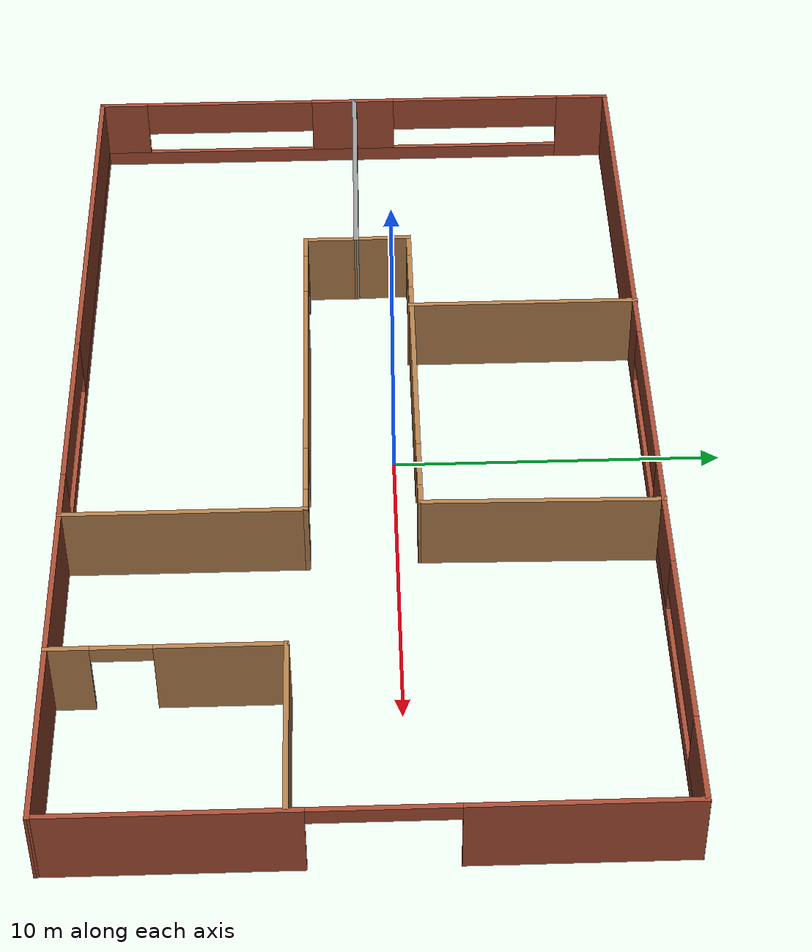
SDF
<?xml version='1.0'?>
<sdf version='1.7'>
  <model name='OfficeWorkSpace'>
    <pose>-0.220416 -1.01827 0 0 -0 0</pose>
    <link name='Wall_14'>
      <pose>0.020249 8.73935 0 0 -0 0.001077</pose>
      <visual name='Wall_14_Visual_0'>
        <pose>-9.14631 0 1.25 0 -0 0</pose>
        <geometry>
          <box>
            <size>12.4112 0.15 2.5</size>
          </box>
        </geometry>
        <material>
          <script>
            <uri>file://media/materials/scripts/gazebo.material</uri>
            <name>Gazebo/Bricks</name>
          </script>
          <ambient>0.760784 0.662745 0.627451 1</ambient>
        </material>
        <meta>
          <layer>0</layer>
        </meta>
      </visual>
      <collision name='Wall_14_Collision_0'>
        <geometry>
          <box>
            <size>12.4112 0.15 2.5</size>
          </box>
        </geometry>
        <pose>-9.14631 0 1.25 0 -0 0</pose>
      </collision>
      <visual name='Wall_14_Visual_1'>
        <pose>6.20561 0 0.25 0 -0 0</pose>
        <geometry>
          <box>
            <size>18.2926 0.15 0.5</size>
          </box>
        </geometry>
        <material>
          <script>
            <uri>file://media/materials/scripts/gazebo.material</uri>
            <name>Gazebo/Bricks</name>
          </script>
          <ambient>0.760784 0.662745 0.627451 1</ambient>
        </material>
        <meta>
          <layer>0</layer>
        </meta>
      </visual>
      <collision name='Wall_14_Collision_1'>
        <geometry>
          <box>
            <size>18.2926 0.15 0.5</size>
          </box>
        </geometry>
        <pose>6.20561 0 0.25 0 -0 0</pose>
      </collision>
      <visual name='Wall_14_Visual_2'>
        <pose>4.84978 0 1.5 0 -0 0</pose>
        <geometry>
          <box>
            <size>4.02735 0.15 2</size>
          </box>
        </geometry>
        <material>
          <script>
            <uri>file://media/materials/scripts/gazebo.material</uri>
            <name>Gazebo/Bricks</name>
          </script>
          <ambient>0.760784 0.662745 0.627451 1</ambient>
        </material>
        <meta>
          <layer>0</layer>
        </meta>
      </visual>
      <collision name='Wall_14_Collision_2'>
        <geometry>
          <box>
            <size>4.02735 0.15 2</size>
          </box>
        </geometry>
        <pose>4.84978 0 1.5 0 -0 0</pose>
      </collision>
      <visual name='Wall_14_Visual_3'>
        <pose>13.9462 0 1.5 0 -0 0</pose>
        <geometry>
          <box>
            <size>2.81134 0.15 2</size>
          </box>
        </geometry>
        <material>
          <script>
            <uri>file://media/materials/scripts/gazebo.material</uri>
            <name>Gazebo/Bricks</name>
          </script>
          <ambient>0.760784 0.662745 0.627451 1</ambient>
        </material>
        <meta>
          <layer>0</layer>
        </meta>
      </visual>
      <collision name='Wall_14_Collision_3'>
        <geometry>
          <box>
            <size>2.81134 0.15 2</size>
          </box>
        </geometry>
        <pose>13.9462 0 1.5 0 -0 0</pose>
      </collision>
      <visual name='Wall_14_Visual_4'>
        <pose>-0.052296 0 1.9 0 -0 0</pose>
        <geometry>
          <box>
            <size>5.7768 0.15 1.2</size>
          </box>
        </geometry>
        <material>
          <script>
            <uri>file://media/materials/scripts/gazebo.material</uri>
            <name>Gazebo/Bricks</name>
          </script>
          <ambient>0.760784 0.662745 0.627451 1</ambient>
        </material>
        <meta>
          <layer>0</layer>
        </meta>
      </visual>
      <collision name='Wall_14_Collision_4'>
        <geometry>
          <box>
            <size>5.7768 0.15 1.2</size>
          </box>
        </geometry>
        <pose>-0.052296 0 1.9 0 -0 0</pose>
      </collision>
      <visual name='Wall_14_Visual_5'>
        <pose>9.70202 0 1.9 0 -0 0</pose>
        <geometry>
          <box>
            <size>5.67713 0.15 1.2</size>
          </box>
        </geometry>
        <material>
          <script>
            <uri>file://media/materials/scripts/gazebo.material</uri>
            <name>Gazebo/Bricks</name>
          </script>
          <ambient>0.760784 0.662745 0.627451 1</ambient>
        </material>
        <meta>
          <layer>0</layer>
        </meta>
      </visual>
      <collision name='Wall_14_Collision_5'>
        <geometry>
          <box>
            <size>5.67713 0.15 1.2</size>
          </box>
        </geometry>
        <pose>9.70202 0 1.9 0 -0 0</pose>
      </collision>
    </link>
    <link name='Wall_15'>
      <pose>15.2986 -0.003783 0 0 -0 -1.57064</pose>
      <visual name='Wall_15_Visual_0'>
        <pose>-5.63265 0 1.25 0 -0 0</pose>
        <geometry>
          <box>
            <size>6.39227 0.15 2.5</size>
          </box>
        </geometry>
        <material>
          <script>
            <uri>file://media/materials/scripts/gazebo.material</uri>
            <name>Gazebo/Bricks</name>
          </script>
          <ambient>1 1 1 1</ambient>
        </material>
        <meta>
          <layer>0</layer>
        </meta>
      </visual>
      <collision name='Wall_15_Collision_0'>
        <geometry>
          <box>
            <size>6.39227 0.15 2.5</size>
          </box>
        </geometry>
        <pose>-5.63265 0 1.25 0 -0 0</pose>
      </collision>
      <visual name='Wall_15_Visual_1'>
        <pose>5.23812 0 1.25 0 -0 0</pose>
        <geometry>
          <box>
            <size>7.18132 0.15 2.5</size>
          </box>
        </geometry>
        <material>
          <script>
            <uri>file://media/materials/scripts/gazebo.material</uri>
            <name>Gazebo/Bricks</name>
          </script>
          <ambient>1 1 1 1</ambient>
        </material>
        <meta>
          <layer>0</layer>
        </meta>
      </visual>
      <collision name='Wall_15_Collision_1'>
        <geometry>
          <box>
            <size>7.18132 0.15 2.5</size>
          </box>
        </geometry>
        <pose>5.23812 0 1.25 0 -0 0</pose>
      </collision>
      <visual name='Wall_15_Visual_2'>
        <pose>-0.394524 0 2.25 0 -0 0</pose>
        <geometry>
          <box>
            <size>4.08398 0.15 0.5</size>
          </box>
        </geometry>
        <material>
          <script>
            <uri>file://media/materials/scripts/gazebo.material</uri>
            <name>Gazebo/Bricks</name>
          </script>
          <ambient>1 1 1 1</ambient>
        </material>
        <meta>
          <layer>0</layer>
        </meta>
      </visual>
      <collision name='Wall_15_Collision_2'>
        <geometry>
          <box>
            <size>4.08398 0.15 0.5</size>
          </box>
        </geometry>
        <pose>-0.394524 0 2.25 0 -0 0</pose>
      </collision>
    </link>
    <link name='Wall_16'>
      <pose>0.005188 -8.69234 0 0 -0 3.13733</pose>
      <visual name='Wall_16_Visual_0'>
        <pose>-9.09656 0 1.25 0 -0 0</pose>
        <geometry>
          <box>
            <size>12.5467 0.15 2.5</size>
          </box>
        </geometry>
        <material>
          <script>
            <uri>file://media/materials/scripts/gazebo.material</uri>
            <name>Gazebo/Bricks</name>
          </script>
          <ambient>1 1 1 1</ambient>
        </material>
        <meta>
          <layer>0</layer>
        </meta>
      </visual>
      <collision name='Wall_16_Collision_0'>
        <geometry>
          <box>
            <size>12.5467 0.15 2.5</size>
          </box>
        </geometry>
        <pose>-9.09656 0 1.25 0 -0 0</pose>
      </collision>
      <visual name='Wall_16_Visual_1'>
        <pose>6.27334 0 0.25 0 -0 0</pose>
        <geometry>
          <box>
            <size>18.1931 0.15 0.5</size>
          </box>
        </geometry>
        <material>
          <script>
            <uri>file://media/materials/scripts/gazebo.material</uri>
            <name>Gazebo/Bricks</name>
          </script>
          <ambient>1 1 1 1</ambient>
        </material>
        <meta>
          <layer>0</layer>
        </meta>
      </visual>
      <collision name='Wall_16_Collision_1'>
        <geometry>
          <box>
            <size>18.1931 0.15 0.5</size>
          </box>
        </geometry>
        <pose>6.27334 0 0.25 0 -0 0</pose>
      </collision>
      <visual name='Wall_16_Visual_2'>
        <pose>9.14409 0 1.5 0 -0 0</pose>
        <geometry>
          <box>
            <size>12.4516 0.15 2</size>
          </box>
        </geometry>
        <material>
          <script>
            <uri>file://media/materials/scripts/gazebo.material</uri>
            <name>Gazebo/Bricks</name>
          </script>
          <ambient>1 1 1 1</ambient>
        </material>
        <meta>
          <layer>0</layer>
        </meta>
      </visual>
      <collision name='Wall_16_Collision_2'>
        <geometry>
          <box>
            <size>12.4516 0.15 2</size>
          </box>
        </geometry>
        <pose>9.14409 0 1.5 0 -0 0</pose>
      </collision>
      <visual name='Wall_16_Visual_3'>
        <pose>0.047528 0 1.9 0 -0 0</pose>
        <geometry>
          <box>
            <size>5.74149 0.15 1.2</size>
          </box>
        </geometry>
        <material>
          <script>
            <uri>file://media/materials/scripts/gazebo.material</uri>
            <name>Gazebo/Bricks</name>
          </script>
          <ambient>1 1 1 1</ambient>
        </material>
        <meta>
          <layer>0</layer>
        </meta>
      </visual>
      <collision name='Wall_16_Collision_3'>
        <geometry>
          <box>
            <size>5.74149 0.15 1.2</size>
          </box>
        </geometry>
        <pose>0.047528 0 1.9 0 -0 0</pose>
      </collision>
    </link>
    <link name='Wall_21'>
      <pose>-15.2896 0.047891 0 0 -0 -1.5708</pose>
      <visual name='Wall_21_Visual_0'>
        <pose>-7.87664 0 1.25 0 -0 0</pose>
        <geometry>
          <box>
            <size>1.74671 0.15 2.5</size>
          </box>
        </geometry>
        <material>
          <script>
            <uri>file://media/materials/scripts/gazebo.material</uri>
            <name>Gazebo/Bricks</name>
          </script>
          <ambient>1 1 1 1</ambient>
        </material>
        <meta>
          <layer>0</layer>
        </meta>
      </visual>
      <collision name='Wall_21_Collision_0'>
        <geometry>
          <box>
            <size>1.74671 0.15 2.5</size>
          </box>
        </geometry>
        <pose>-7.87664 0 1.25 0 -0 0</pose>
      </collision>
      <visual name='Wall_21_Visual_1'>
        <pose>0.873356 0 0.25 0 -0 0</pose>
        <geometry>
          <box>
            <size>15.7533 0.15 0.5</size>
          </box>
        </geometry>
        <material>
          <script>
            <uri>file://media/materials/scripts/gazebo.material</uri>
            <name>Gazebo/Bricks</name>
          </script>
          <ambient>1 1 1 1</ambient>
        </material>
        <meta>
          <layer>0</layer>
        </meta>
      </visual>
      <collision name='Wall_21_Collision_1'>
        <geometry>
          <box>
            <size>15.7533 0.15 0.5</size>
          </box>
        </geometry>
        <pose>0.873356 0 0.25 0 -0 0</pose>
      </collision>
      <visual name='Wall_21_Visual_2'>
        <pose>0.053778 0 1.5 0 -0 0</pose>
        <geometry>
          <box>
            <size>2.81182 0.15 2</size>
          </box>
        </geometry>
        <material>
          <script>
            <uri>file://media/materials/scripts/gazebo.material</uri>
            <name>Gazebo/Bricks</name>
          </script>
          <ambient>1 1 1 1</ambient>
        </material>
        <meta>
          <layer>0</layer>
        </meta>
      </visual>
      <collision name='Wall_21_Collision_2'>
        <geometry>
          <box>
            <size>2.81182 0.15 2</size>
          </box>
        </geometry>
        <pose>0.053778 0 1.5 0 -0 0</pose>
      </collision>
      <visual name='Wall_21_Visual_3'>
        <pose>7.94456 0 1.5 0 -0 0</pose>
        <geometry>
          <box>
            <size>1.61088 0.15 2</size>
          </box>
        </geometry>
        <material>
          <script>
            <uri>file://media/materials/scripts/gazebo.material</uri>
            <name>Gazebo/Bricks</name>
          </script>
          <ambient>1 1 1 1</ambient>
        </material>
        <meta>
          <layer>0</layer>
        </meta>
      </visual>
      <collision name='Wall_21_Collision_3'>
        <geometry>
          <box>
            <size>1.61088 0.15 2</size>
          </box>
        </geometry>
        <pose>7.94456 0 1.5 0 -0 0</pose>
      </collision>
      <visual name='Wall_21_Visual_4'>
        <pose>-4.17771 0 1.9 0 -0 0</pose>
        <geometry>
          <box>
            <size>5.65116 0.15 1.2</size>
          </box>
        </geometry>
        <material>
          <script>
            <uri>file://media/materials/scripts/gazebo.material</uri>
            <name>Gazebo/Bricks</name>
          </script>
          <ambient>1 1 1 1</ambient>
        </material>
        <meta>
          <layer>0</layer>
        </meta>
      </visual>
      <collision name='Wall_21_Collision_4'>
        <geometry>
          <box>
            <size>5.65116 0.15 1.2</size>
          </box>
        </geometry>
        <pose>-4.17771 0 1.9 0 -0 0</pose>
      </collision>
      <visual name='Wall_21_Visual_5'>
        <pose>4.2994 0 1.9 0 -0 0</pose>
        <geometry>
          <box>
            <size>5.67943 0.15 1.2</size>
          </box>
        </geometry>
        <material>
          <script>
            <uri>file://media/materials/scripts/gazebo.material</uri>
            <name>Gazebo/Bricks</name>
          </script>
          <ambient>1 1 1 1</ambient>
        </material>
        <meta>
          <layer>0</layer>
        </meta>
      </visual>
      <collision name='Wall_21_Collision_5'>
        <geometry>
          <box>
            <size>5.67943 0.15 1.2</size>
          </box>
        </geometry>
        <pose>4.2994 0 1.9 0 -0 0</pose>
      </collision>
    </link>
    <link name='Wall_23'>
      <collision name='Wall_23_Collision'>
        <geometry>
          <box>
            <size>7.69409 0.15 2.5</size>
          </box>
        </geometry>
        <pose>0 0 1.25 0 -0 0</pose>
      </collision>
      <visual name='Wall_23_Visual'>
        <pose>0 0 1.25 0 -0 0</pose>
        <geometry>
          <box>
            <size>7.69409 0.15 2.5</size>
          </box>
        </geometry>
        <material>
          <script>
            <uri>file://media/materials/scripts/gazebo.material</uri>
            <name>Gazebo/Grey</name>
          </script>
          <ambient>1 1 1 1</ambient>
        </material>
        <meta>
          <layer>0</layer>
        </meta>
      </visual>
      <pose>-11.5278 0.031544 0 0 -0 -0.006288</pose>
    </link>
    <link name='Wall_50'>
      <collision name='Wall_50_Collision'>
        <geometry>
          <box>
            <size>7.69409 0.15 2.5</size>
          </box>
        </geometry>
        <pose>0 0 1.25 0 -0 0</pose>
      </collision>
      <visual name='Wall_50_Visual'>
        <pose>0 0 1.25 0 -0 0</pose>
        <geometry>
          <box>
            <size>7.69409 0.15 2.5</size>
          </box>
        </geometry>
        <material>
          <script>
            <uri>file://media/materials/scripts/gazebo.material</uri>
            <name>Gazebo/Wood</name>
          </script>
          <ambient>0.760784 0.662745 0.627451 1</ambient>
        </material>
        <meta>
          <layer>0</layer>
        </meta>
      </visual>
      <pose>-11.5278 0.031544 0 0 -0 -0.006288</pose>
    </link>
    <link name='Wall_51'>
      <collision name='Wall_51_Collision'>
        <geometry>
          <box>
            <size>1.84917 0.15 2.5</size>
          </box>
        </geometry>
        <pose>0 0 1.25 0 -0 0</pose>
      </collision>
      <visual name='Wall_51_Visual'>
        <pose>0 0 1.25 0 -0 0</pose>
        <geometry>
          <box>
            <size>1.84917 0.15 2.5</size>
          </box>
        </geometry>
        <material>
          <script>
            <uri>file://media/materials/scripts/gazebo.material</uri>
            <name>Gazebo/Wood</name>
          </script>
          <ambient>1 1 1 1</ambient>
        </material>
        <meta>
          <layer>0</layer>
        </meta>
      </visual>
      <pose>-7.78072 0.857048 0 0 -0 1.60007</pose>
    </link>
    <link name='Wall_52'>
      <pose>-1.75558 1.70627 0 0 -0 0</pose>
      <visual name='Wall_52_Visual_0'>
        <pose>-5.62304 0 1.25 0 -0 0</pose>
        <geometry>
          <box>
            <size>1.00393 0.15 2.5</size>
          </box>
        </geometry>
        <material>
          <script>
            <uri>file://media/materials/scripts/gazebo.material</uri>
            <name>Gazebo/Wood</name>
          </script>
          <ambient>1 1 1 1</ambient>
        </material>
        <meta>
          <layer>0</layer>
        </meta>
      </visual>
      <collision name='Wall_52_Collision_0'>
        <geometry>
          <box>
            <size>1.00393 0.15 2.5</size>
          </box>
        </geometry>
        <pose>-5.62304 0 1.25 0 -0 0</pose>
      </collision>
      <visual name='Wall_52_Visual_1'>
        <pose>0.043156 0 1.25 0 -0 0</pose>
        <geometry>
          <box>
            <size>7.19564 0.15 2.5</size>
          </box>
        </geometry>
        <material>
          <script>
            <uri>file://media/materials/scripts/gazebo.material</uri>
            <name>Gazebo/Wood</name>
          </script>
          <ambient>1 1 1 1</ambient>
        </material>
        <meta>
          <layer>0</layer>
        </meta>
      </visual>
      <collision name='Wall_52_Collision_1'>
        <geometry>
          <box>
            <size>7.19564 0.15 2.5</size>
          </box>
        </geometry>
        <pose>0.043156 0 1.25 0 -0 0</pose>
      </collision>
      <visual name='Wall_52_Visual_2'>
        <pose>5.74024 0 1.25 0 -0 0</pose>
        <geometry>
          <box>
            <size>0.769524 0.15 2.5</size>
          </box>
        </geometry>
        <material>
          <script>
            <uri>file://media/materials/scripts/gazebo.material</uri>
            <name>Gazebo/Wood</name>
          </script>
          <ambient>1 1 1 1</ambient>
        </material>
        <meta>
          <layer>0</layer>
        </meta>
      </visual>
      <collision name='Wall_52_Collision_2'>
        <geometry>
          <box>
            <size>0.769524 0.15 2.5</size>
          </box>
        </geometry>
        <pose>5.74024 0 1.25 0 -0 0</pose>
      </collision>
      <visual name='Wall_52_Visual_3'>
        <pose>-4.33787 0 2.25 0 -0 0</pose>
        <geometry>
          <box>
            <size>1.56641 0.15 0.5</size>
          </box>
        </geometry>
        <material>
          <script>
            <uri>file://media/materials/scripts/gazebo.material</uri>
            <name>Gazebo/Wood</name>
          </script>
          <ambient>1 1 1 1</ambient>
        </material>
        <meta>
          <layer>0</layer>
        </meta>
      </visual>
      <collision name='Wall_52_Collision_3'>
        <geometry>
          <box>
            <size>1.56641 0.15 0.5</size>
          </box>
        </geometry>
        <pose>-4.33787 0 2.25 0 -0 0</pose>
      </collision>
      <visual name='Wall_52_Visual_4'>
        <pose>4.49823 0 2.25 0 -0 0</pose>
        <geometry>
          <box>
            <size>1.7145 0.15 0.5</size>
          </box>
        </geometry>
        <material>
          <script>
            <uri>file://media/materials/scripts/gazebo.material</uri>
            <name>Gazebo/Wood</name>
          </script>
          <ambient>1 1 1 1</ambient>
        </material>
        <meta>
          <layer>0</layer>
        </meta>
      </visual>
      <collision name='Wall_52_Collision_4'>
        <geometry>
          <box>
            <size>1.7145 0.15 0.5</size>
          </box>
        </geometry>
        <pose>4.49823 0 2.25 0 -0 0</pose>
      </collision>
    </link>
    <link name='Wall_53'>
      <collision name='Wall_53_Collision'>
        <geometry>
          <box>
            <size>7.19979 0.15 2.5</size>
          </box>
        </geometry>
        <pose>0 0 1.25 0 -0 0</pose>
      </collision>
      <visual name='Wall_53_Visual'>
        <pose>0 0 1.25 0 -0 0</pose>
        <geometry>
          <box>
            <size>7.19979 0.15 2.5</size>
          </box>
        </geometry>
        <material>
          <script>
            <uri>file://media/materials/scripts/gazebo.material</uri>
            <name>Gazebo/Wood</name>
          </script>
          <ambient>1 1 1 1</ambient>
        </material>
        <meta>
          <layer>0</layer>
        </meta>
      </visual>
      <pose>4.34731 5.23076 0 0 -0 1.55579</pose>
    </link>
    <link name='Wall_55'>
      <collision name='Wall_55_Collision'>
        <geometry>
          <box>
            <size>7.25 0.15 2.5</size>
          </box>
        </geometry>
        <pose>0 0 1.25 0 -0 0</pose>
      </collision>
      <visual name='Wall_55_Visual'>
        <pose>0 0 1.25 0 -0 0</pose>
        <geometry>
          <box>
            <size>7.25 0.15 2.5</size>
          </box>
        </geometry>
        <material>
          <script>
            <uri>file://media/materials/scripts/gazebo.material</uri>
            <name>Gazebo/Wood</name>
          </script>
          <ambient>1 1 1 1</ambient>
        </material>
        <meta>
          <layer>0</layer>
        </meta>
      </visual>
      <pose>-4.4394 5.20788 0 0 -0 -1.5708</pose>
    </link>
    <link name='Wall_57'>
      <collision name='Wall_57_Collision'>
        <geometry>
          <box>
            <size>7.25 0.15 2.5</size>
          </box>
        </geometry>
        <pose>0 0 1.25 0 -0 0</pose>
      </collision>
      <visual name='Wall_57_Visual'>
        <pose>0 0 1.25 0 -0 0</pose>
        <geometry>
          <box>
            <size>7.25 0.15 2.5</size>
          </box>
        </geometry>
        <material>
          <script>
            <uri>file://media/materials/scripts/gazebo.material</uri>
            <name>Gazebo/Wood</name>
          </script>
          <ambient>1 1 1 1</ambient>
        </material>
        <meta>
          <layer>0</layer>
        </meta>
      </visual>
      <pose>4.47074 -5.16685 0 0 -0 1.5708</pose>
    </link>
    <link name='Wall_58'>
      <pose>-1.64256 -1.61685 0 0 -0 3.14159</pose>
      <visual name='Wall_58_Visual_0'>
        <pose>-5.75258 0 1.25 0 -0 0</pose>
        <geometry>
          <box>
            <size>0.871432 0.15 2.5</size>
          </box>
        </geometry>
        <material>
          <script>
            <uri>file://media/materials/scripts/gazebo.material</uri>
            <name>Gazebo/Wood</name>
          </script>
          <ambient>0.760784 0.662745 0.627451 1</ambient>
        </material>
        <meta>
          <layer>0</layer>
        </meta>
      </visual>
      <collision name='Wall_58_Collision_0'>
        <geometry>
          <box>
            <size>0.871432 0.15 2.5</size>
          </box>
        </geometry>
        <pose>-5.75258 0 1.25 0 -0 0</pose>
      </collision>
      <visual name='Wall_58_Visual_1'>
        <pose>-0.023054 0 1.25 0 -0 0</pose>
        <geometry>
          <box>
            <size>7.15862 0.15 2.5</size>
          </box>
        </geometry>
        <material>
          <script>
            <uri>file://media/materials/scripts/gazebo.material</uri>
            <name>Gazebo/Wood</name>
          </script>
          <ambient>0.760784 0.662745 0.627451 1</ambient>
        </material>
        <meta>
          <layer>0</layer>
        </meta>
      </visual>
      <collision name='Wall_58_Collision_1'>
        <geometry>
          <box>
            <size>7.15862 0.15 2.5</size>
          </box>
        </geometry>
        <pose>-0.023054 0 1.25 0 -0 0</pose>
      </collision>
      <visual name='Wall_58_Visual_2'>
        <pose>5.74187 0 1.25 0 -0 0</pose>
        <geometry>
          <box>
            <size>0.892858 0.15 2.5</size>
          </box>
        </geometry>
        <material>
          <script>
            <uri>file://media/materials/scripts/gazebo.material</uri>
            <name>Gazebo/Wood</name>
          </script>
          <ambient>0.760784 0.662745 0.627451 1</ambient>
        </material>
        <meta>
          <layer>0</layer>
        </meta>
      </visual>
      <collision name='Wall_58_Collision_2'>
        <geometry>
          <box>
            <size>0.892858 0.15 2.5</size>
          </box>
        </geometry>
        <pose>5.74187 0 1.25 0 -0 0</pose>
      </collision>
      <visual name='Wall_58_Visual_3'>
        <pose>-4.45961 0 2.25 0 -0 0</pose>
        <geometry>
          <box>
            <size>1.7145 0.15 0.5</size>
          </box>
        </geometry>
        <material>
          <script>
            <uri>file://media/materials/scripts/gazebo.material</uri>
            <name>Gazebo/Wood</name>
          </script>
          <ambient>0.760784 0.662745 0.627451 1</ambient>
        </material>
        <meta>
          <layer>0</layer>
        </meta>
      </visual>
      <collision name='Wall_58_Collision_3'>
        <geometry>
          <box>
            <size>1.7145 0.15 0.5</size>
          </box>
        </geometry>
        <pose>-4.45961 0 2.25 0 -0 0</pose>
      </collision>
      <visual name='Wall_58_Visual_4'>
        <pose>4.42585 0 2.25 0 -0 0</pose>
        <geometry>
          <box>
            <size>1.73918 0.15 0.5</size>
          </box>
        </geometry>
        <material>
          <script>
            <uri>file://media/materials/scripts/gazebo.material</uri>
            <name>Gazebo/Wood</name>
          </script>
          <ambient>0.760784 0.662745 0.627451 1</ambient>
        </material>
        <meta>
          <layer>0</layer>
        </meta>
      </visual>
      <collision name='Wall_58_Collision_4'>
        <geometry>
          <box>
            <size>1.73918 0.15 0.5</size>
          </box>
        </geometry>
        <pose>4.42585 0 2.25 0 -0 0</pose>
      </collision>
    </link>
    <link name='Wall_59'>
      <collision name='Wall_59_Collision'>
        <geometry>
          <box>
            <size>1.75 0.15 2.5</size>
          </box>
        </geometry>
        <pose>0 0 1.25 0 -0 0</pose>
      </collision>
      <visual name='Wall_59_Visual'>
        <pose>0 0 1.25 0 -0 0</pose>
        <geometry>
          <box>
            <size>1.75 0.15 2.5</size>
          </box>
        </geometry>
        <material>
          <script>
            <uri>file://media/materials/scripts/gazebo.material</uri>
            <name>Gazebo/Wood</name>
          </script>
          <ambient>1 1 1 1</ambient>
        </material>
        <meta>
          <layer>0</layer>
        </meta>
      </visual>
      <pose>-7.75585 -0.792173 0 0 -0 1.5708</pose>
    </link>
    <link name='Wall_61'>
      <pose>9.60456 -5.44154 0 0 -0 1.5708</pose>
      <visual name='Wall_61_Visual_0'>
        <pose>-2.72949 0 1.25 0 -0 0</pose>
        <geometry>
          <box>
            <size>1.29102 0.15 2.5</size>
          </box>
        </geometry>
        <material>
          <script>
            <uri>file://media/materials/scripts/gazebo.material</uri>
            <name>Gazebo/Wood</name>
          </script>
          <ambient>1 1 1 1</ambient>
        </material>
        <meta>
          <layer>0</layer>
        </meta>
      </visual>
      <collision name='Wall_61_Collision_0'>
        <geometry>
          <box>
            <size>1.29102 0.15 2.5</size>
          </box>
        </geometry>
        <pose>-2.72949 0 1.25 0 -0 0</pose>
      </collision>
      <visual name='Wall_61_Visual_1'>
        <pose>1.5151 0 1.25 0 -0 0</pose>
        <geometry>
          <box>
            <size>3.71979 0.15 2.5</size>
          </box>
        </geometry>
        <material>
          <script>
            <uri>file://media/materials/scripts/gazebo.material</uri>
            <name>Gazebo/Wood</name>
          </script>
          <ambient>1 1 1 1</ambient>
        </material>
        <meta>
          <layer>0</layer>
        </meta>
      </visual>
      <collision name='Wall_61_Collision_1'>
        <geometry>
          <box>
            <size>3.71979 0.15 2.5</size>
          </box>
        </geometry>
        <pose>1.5151 0 1.25 0 -0 0</pose>
      </collision>
      <visual name='Wall_61_Visual_2'>
        <pose>-1.21439 0 2.25 0 -0 0</pose>
        <geometry>
          <box>
            <size>1.73918 0.15 0.5</size>
          </box>
        </geometry>
        <material>
          <script>
            <uri>file://media/materials/scripts/gazebo.material</uri>
            <name>Gazebo/Wood</name>
          </script>
          <ambient>1 1 1 1</ambient>
        </material>
        <meta>
          <layer>0</layer>
        </meta>
      </visual>
      <collision name='Wall_61_Collision_2'>
        <geometry>
          <box>
            <size>1.73918 0.15 0.5</size>
          </box>
        </geometry>
        <pose>-1.21439 0 2.25 0 -0 0</pose>
      </collision>
    </link>
    <link name='Wall_62'>
      <collision name='Wall_62_Collision'>
        <geometry>
          <box>
            <size>5.75 0.15 2.5</size>
          </box>
        </geometry>
        <pose>0 0 1.25 0 -0 0</pose>
      </collision>
      <visual name='Wall_62_Visual'>
        <pose>0 0 1.25 0 -0 0</pose>
        <geometry>
          <box>
            <size>5.75 0.15 2.5</size>
          </box>
        </geometry>
        <material>
          <script>
            <uri>file://media/materials/scripts/gazebo.material</uri>
            <name>Gazebo/Wood</name>
          </script>
          <ambient>1 1 1 1</ambient>
        </material>
        <meta>
          <layer>0</layer>
        </meta>
      </visual>
      <pose>12.4046 -2.14154 0 0 -0 0</pose>
    </link>
    <static>1</static>
  </model>
</sdf>
